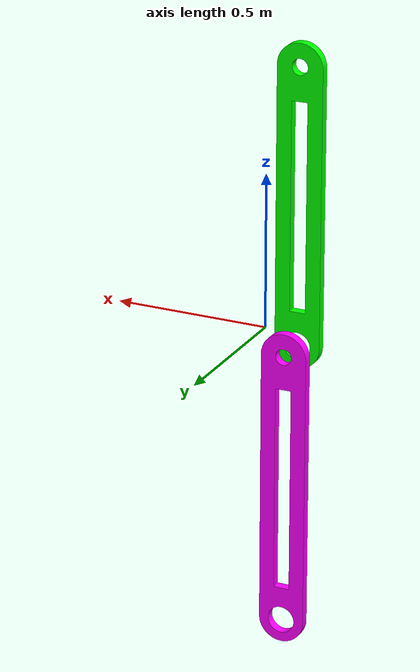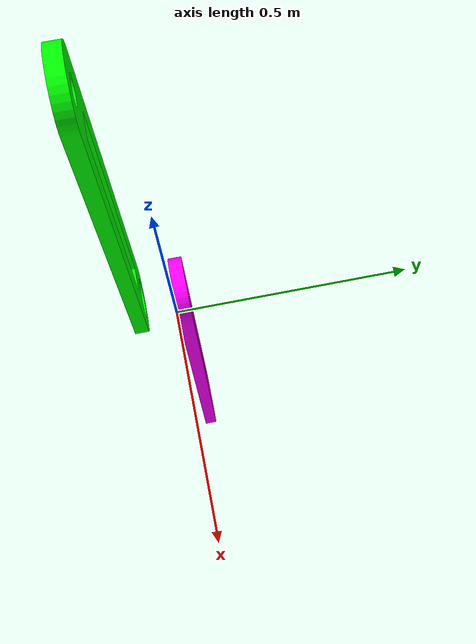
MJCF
<!-- https://mujoco.readthedocs.io/en/latest/overview.html?highlight=hello.xml#examples -->
<mujoco>
  <compiler meshdir="meshes"/>
  <asset>
    <mesh name="Brazo1" file="Brazo1C.STL"/>
    <mesh name="Brazop" file="PRUEBA BRAZO 2.STL" scale="0.003 0.003 0.003"/>
    <mesh name="Brazo2" file="brazo2C.STL" scale= "0.005 0.005 0.005"/>
  </asset>

  <option gravity="0 0 -9.81"/>

  <worldbody>
    <light diffuse="0 0 0" pos="0 0 10" dir="0 0 -1"/>
    <body pos="0 0 0" euler="0 180 0">
      <joint name="joint0" type="hinge" axis="0 1.2 0" pos="0.1 0 0.98" damping = "0.02" />
      <geom type="mesh" mesh="Brazop" rgba="1 0 1 1" mass="1" />
      <body pos="0 -0.1 -0.9" euler="0 0 0">
       <joint name="joint1" type="hinge" axis="0 1.2 0" pos="0.1 0 0.98" damping = "0.02"/>
       <geom type="mesh" mesh="Brazop" rgba="0 1 0 1" mass="1"/>
      </body>
    </body>
  </worldbody>

  <actuator>

    <motor name="torque0" joint="joint0" gear="1"/>
    <motor name="torque1" joint="joint1" gear="1"/>
  </actuator>
</mujoco>
